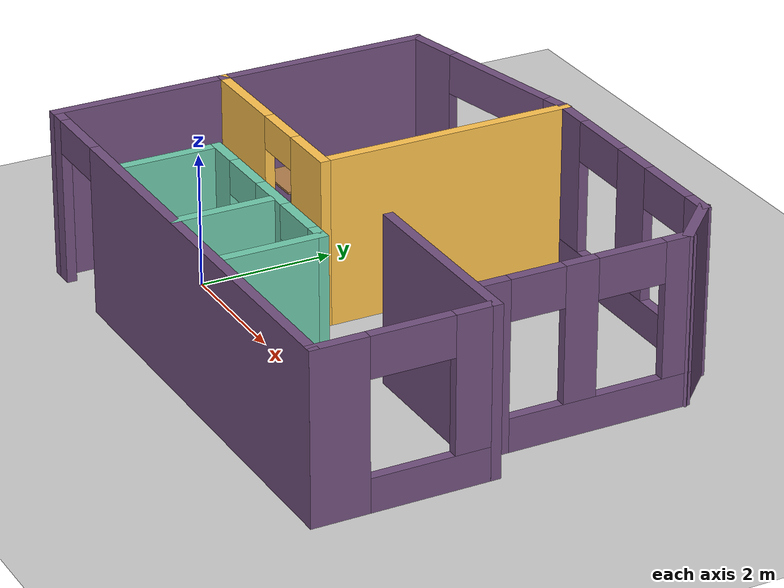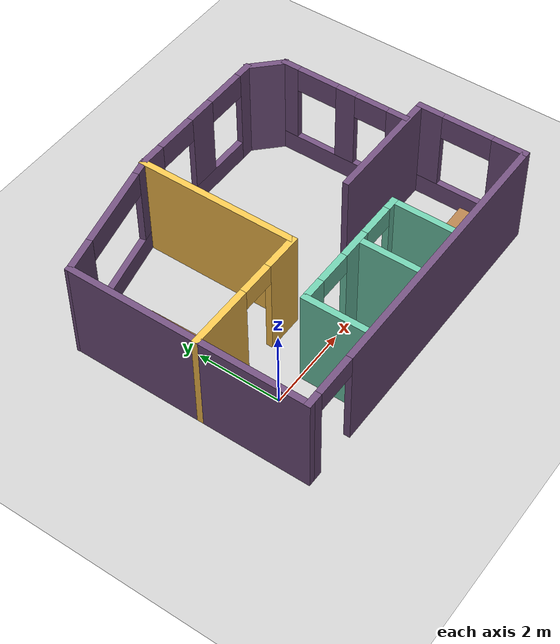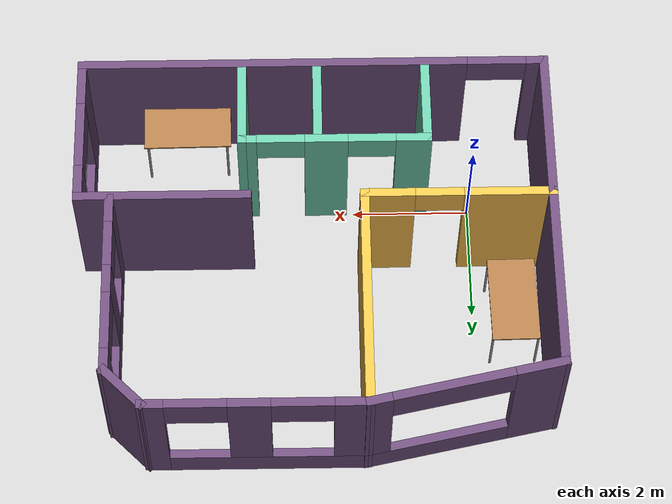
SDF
<sdf version="1.6">
 <world name="default">
  <model name="ground_plane">
   <static>1</static>
   <link name="link">
    <collision name="collision">
     <geometry><plane><normal>0 0 1</normal><size>100 100</size></plane></geometry>
     <surface>
      <contact><collide_bitmask>65535</collide_bitmask></contact>
      <friction><ode><mu>100</mu><mu2>50</mu2></ode></friction>
     </surface>
    </collision>
    <visual name="visual">
     <cast_shadows>0</cast_shadows>
     <geometry><plane><normal>0 0 1</normal><size>100 100</size></plane></geometry>
     <material>
      <script><uri>file://media/materials/scripts/gazebo.material</uri><name>Gazebo/Grey</name></script>
     </material>
    </visual>
   </link>
  </model>
  <model name="apartment-35">
   <pose>2.67015 1.59203 0 0 -0 0</pose>
   <link name="Wall_0">
    <pose>0.006768 -3.16806 0 0 -0 0</pose>
    <visual name="Wall_0_Visual_0">
     <pose>-3.79978 0 1.25 0 -0 0</pose>
     <geometry><box><size>0.37543 0.15 2.5</size></box></geometry>
     <material>
      <script><uri>file://media/materials/scripts/gazebo.material</uri><name>Gazebo/Grey</name></script>
      <ambient>0.443137 0.313726 0.494118 1</ambient>
     </material>
     <meta><layer>0</layer></meta>
    </visual>
    <collision name="Wall_0_Collision_0">
     <geometry><box><size>0.37543 0.15 2.5</size></box></geometry>
     <pose>-3.79978 0 1.25 0 -0 0</pose>
    </collision>
    <visual name="Wall_0_Visual_1">
     <pose>0.687715 0 1.25 0 -0 0</pose>
     <geometry><box><size>6.59957 0.15 2.5</size></box></geometry>
     <material>
      <script><uri>file://media/materials/scripts/gazebo.material</uri><name>Gazebo/Grey</name></script>
      <ambient>0.443137 0.313726 0.494118 1</ambient>
     </material>
     <meta><layer>0</layer></meta>
    </visual>
    <collision name="Wall_0_Collision_1">
     <geometry><box><size>6.59957 0.15 2.5</size></box></geometry>
     <pose>0.687715 0 1.25 0 -0 0</pose>
    </collision>
    <visual name="Wall_0_Visual_2">
     <pose>-3.11207 0 2.25 0 -0 0</pose>
     <geometry><box><size>1 0.15 0.5</size></box></geometry>
     <material>
      <script><uri>file://media/materials/scripts/gazebo.material</uri><name>Gazebo/Grey</name></script>
      <ambient>0.443137 0.313726 0.494118 1</ambient>
     </material>
     <meta><layer>0</layer></meta>
    </visual>
    <collision name="Wall_0_Collision_2">
     <geometry><box><size>1 0.15 0.5</size></box></geometry>
     <pose>-3.11207 0 2.25 0 -0 0</pose>
    </collision>
   </link>
   <link name="Wall_10">
    <pose>0.994046 3.13706 0 0 -0 -3.14153</pose>
    <visual name="Wall_10_Visual_0">
     <pose>-1.66159 0 1.25 0 -0 0</pose>
     <geometry><box><size>0.426824 0.15 2.5</size></box></geometry>
     <material>
      <script><uri>file://media/materials/scripts/gazebo.material</uri><name>Gazebo/Grey</name></script>
      <ambient>0.443137 0.313726 0.494118 1</ambient>
     </material>
     <meta><layer>0</layer></meta>
    </visual>
    <collision name="Wall_10_Collision_0">
     <geometry><box><size>0.426824 0.15 2.5</size></box></geometry>
     <pose>-1.66159 0 1.25 0 -0 0</pose>
    </collision>
    <visual name="Wall_10_Visual_1">
     <pose>0.213412 0 0.25 0 -0 0</pose>
     <geometry><box><size>3.32318 0.15 0.5</size></box></geometry>
     <material>
      <script><uri>file://media/materials/scripts/gazebo.material</uri><name>Gazebo/Grey</name></script>
      <ambient>0.443137 0.313726 0.494118 1</ambient>
     </material>
     <meta><layer>0</layer></meta>
    </visual>
    <collision name="Wall_10_Collision_1">
     <geometry><box><size>3.32318 0.15 0.5</size></box></geometry>
     <pose>0.213412 0 0.25 0 -0 0</pose>
    </collision>
    <visual name="Wall_10_Visual_2">
     <pose>-0.103407 0 1.5 0 -0 0</pose>
     <geometry><box><size>0.689537 0.15 2</size></box></geometry>
     <material>
      <script><uri>file://media/materials/scripts/gazebo.material</uri><name>Gazebo/Grey</name></script>
      <ambient>0.443137 0.313726 0.494118 1</ambient>
     </material>
     <meta><layer>0</layer></meta>
    </visual>
    <collision name="Wall_10_Collision_2">
     <geometry><box><size>0.689537 0.15 2</size></box></geometry>
     <pose>-0.103407 0 1.5 0 -0 0</pose>
    </collision>
    <visual name="Wall_10_Visual_3">
     <pose>1.55818 0 1.5 0 -0 0</pose>
     <geometry><box><size>0.633638 0.15 2</size></box></geometry>
     <material>
      <script><uri>file://media/materials/scripts/gazebo.material</uri><name>Gazebo/Grey</name></script>
      <ambient>0.443137 0.313726 0.494118 1</ambient>
     </material>
     <meta><layer>0</layer></meta>
    </visual>
    <collision name="Wall_10_Collision_3">
     <geometry><box><size>0.633638 0.15 2</size></box></geometry>
     <pose>1.55818 0 1.5 0 -0 0</pose>
    </collision>
    <visual name="Wall_10_Visual_4">
     <pose>-0.948176 0 2.2 0 -0 0</pose>
     <geometry><box><size>1 0.15 0.6</size></box></geometry>
     <material>
      <script><uri>file://media/materials/scripts/gazebo.material</uri><name>Gazebo/Grey</name></script>
      <ambient>0.443137 0.313726 0.494118 1</ambient>
     </material>
     <meta><layer>0</layer></meta>
    </visual>
    <collision name="Wall_10_Collision_4">
     <geometry><box><size>1 0.15 0.6</size></box></geometry>
     <pose>-0.948176 0 2.2 0 -0 0</pose>
    </collision>
    <visual name="Wall_10_Visual_5">
     <pose>0.741362 0 2.2 0 -0 0</pose>
     <geometry><box><size>1 0.15 0.6</size></box></geometry>
     <material>
      <script><uri>file://media/materials/scripts/gazebo.material</uri><name>Gazebo/Grey</name></script>
      <ambient>0.443137 0.313726 0.494118 1</ambient>
     </material>
     <meta><layer>0</layer></meta>
    </visual>
    <collision name="Wall_10_Collision_5">
     <geometry><box><size>1 0.15 0.6</size></box></geometry>
     <pose>0.741362 0 2.2 0 -0 0</pose>
    </collision>
   </link>
   <link name="Wall_11">
    <collision name="Wall_11_Collision">
     <geometry><box><size>3.901 0.15 2.5</size></box></geometry>
     <pose>0 0 1.25 0 -0 0</pose>
    </collision>
    <visual name="Wall_11_Visual">
     <pose>0 0 1.25 0 -0 0</pose>
     <geometry><box><size>3.901 0.15 2.5</size></box></geometry>
     <material>
      <script><uri>file://media/materials/scripts/gazebo.material</uri><name>Gazebo/Grey</name></script>
      <ambient>1 0.764706 0.305882 1</ambient>
     </material>
     <meta><layer>0</layer></meta>
    </visual>
    <pose>-0.805732 1.26144 0 0 -0 -1.5708</pose>
   </link>
   <link name="Wall_13">
    <pose>-2.35573 -0.61406 0 0 -0 3.14159</pose>
    <visual name="Wall_13_Visual_0">
     <pose>-1.16875 0 1.25 0 -0 0</pose>
     <geometry><box><size>0.912507 0.15 2.5</size></box></geometry>
     <material>
      <script><uri>file://media/materials/scripts/gazebo.material</uri><name>Gazebo/Grey</name></script>
      <ambient>1 0.764706 0.305882 1</ambient>
     </material>
     <meta><layer>0</layer></meta>
    </visual>
    <collision name="Wall_13_Collision_0">
     <geometry><box><size>0.912507 0.15 2.5</size></box></geometry>
     <pose>-1.16875 0 1.25 0 -0 0</pose>
    </collision>
    <visual name="Wall_13_Visual_1">
     <pose>0.856253 0 1.25 0 -0 0</pose>
     <geometry><box><size>1.53749 0.15 2.5</size></box></geometry>
     <material>
      <script><uri>file://media/materials/scripts/gazebo.material</uri><name>Gazebo/Grey</name></script>
      <ambient>1 0.764706 0.305882 1</ambient>
     </material>
     <meta><layer>0</layer></meta>
    </visual>
    <collision name="Wall_13_Collision_1">
     <geometry><box><size>1.53749 0.15 2.5</size></box></geometry>
     <pose>0.856253 0 1.25 0 -0 0</pose>
    </collision>
    <visual name="Wall_13_Visual_2">
     <pose>-0.312493 0 2.25 0 -0 0</pose>
     <geometry><box><size>0.8 0.15 0.5</size></box></geometry>
     <material>
      <script><uri>file://media/materials/scripts/gazebo.material</uri><name>Gazebo/Grey</name></script>
      <ambient>1 0.764706 0.305882 1</ambient>
     </material>
     <meta><layer>0</layer></meta>
    </visual>
    <collision name="Wall_13_Collision_2">
     <geometry><box><size>0.8 0.15 0.5</size></box></geometry>
     <pose>-0.312493 0 2.25 0 -0 0</pose>
    </collision>
   </link>
   <link name="Wall_15">
    <collision name="Wall_15_Collision">
     <geometry><box><size>2.70438 0.15 2.5</size></box></geometry>
     <pose>0 0 1.25 0 -0 0</pose>
    </collision>
    <visual name="Wall_15_Visual">
     <pose>0 0 1.25 0 -0 0</pose>
     <geometry><box><size>2.70438 0.15 2.5</size></box></geometry>
     <material>
      <script><uri>file://media/materials/scripts/gazebo.material</uri><name>Gazebo/Grey</name></script>
      <ambient>0.443137 0.313726 0.494118 1</ambient>
     </material>
     <meta><layer>0</layer></meta>
    </visual>
    <pose>-3.90573 -1.89106 0 0 -0 -1.5708</pose>
   </link>
   <link name="Wall_17">
    <collision name="Wall_17_Collision">
     <geometry><box><size>3.25 0.15 2.5</size></box></geometry>
     <pose>0 0 1.25 0 -0 0</pose>
    </collision>
    <visual name="Wall_17_Visual">
     <pose>0 0 1.25 0 -0 0</pose>
     <geometry><box><size>3.25 0.15 2.5</size></box></geometry>
     <material>
      <script><uri>file://media/materials/scripts/gazebo.material</uri><name>Gazebo/Grey</name></script>
      <ambient>0.443137 0.313726 0.494118 1</ambient>
     </material>
     <meta><layer>0</layer></meta>
    </visual>
    <pose>-3.90573 0.93594 0 0 -0 1.5708</pose>
   </link>
   <link name="Wall_18">
    <pose>-2.35573 2.81144 0 0 -0 0.206992</pose>
    <visual name="Wall_18_Visual_0">
     <pose>-1.2169 0 1.25 0 -0 0</pose>
     <geometry><box><size>0.883821 0.15 2.5</size></box></geometry>
     <material>
      <script><uri>file://media/materials/scripts/gazebo.material</uri><name>Gazebo/Grey</name></script>
      <ambient>0.443137 0.313726 0.494118 1</ambient>
     </material>
     <meta><layer>0</layer></meta>
    </visual>
    <collision name="Wall_18_Collision_0">
     <geometry><box><size>0.883821 0.15 2.5</size></box></geometry>
     <pose>-1.2169 0 1.25 0 -0 0</pose>
    </collision>
    <visual name="Wall_18_Visual_1">
     <pose>0.441911 0 0.25 0 -0 0</pose>
     <geometry><box><size>2.4338 0.15 0.5</size></box></geometry>
     <material>
      <script><uri>file://media/materials/scripts/gazebo.material</uri><name>Gazebo/Grey</name></script>
      <ambient>0.443137 0.313726 0.494118 1</ambient>
     </material>
     <meta><layer>0</layer></meta>
    </visual>
    <collision name="Wall_18_Collision_1">
     <geometry><box><size>2.4338 0.15 0.5</size></box></geometry>
     <pose>0.441911 0 0.25 0 -0 0</pose>
    </collision>
    <visual name="Wall_18_Visual_2">
     <pose>1.44191 0 1.5 0 -0 0</pose>
     <geometry><box><size>0.433796 0.15 2</size></box></geometry>
     <material>
      <script><uri>file://media/materials/scripts/gazebo.material</uri><name>Gazebo/Grey</name></script>
      <ambient>0.443137 0.313726 0.494118 1</ambient>
     </material>
     <meta><layer>0</layer></meta>
    </visual>
    <collision name="Wall_18_Collision_2">
     <geometry><box><size>0.433796 0.15 2</size></box></geometry>
     <pose>1.44191 0 1.5 0 -0 0</pose>
    </collision>
    <visual name="Wall_18_Visual_3">
     <pose>0.225013 0 2.2 0 -0 0</pose>
     <geometry><box><size>2 0.15 0.6</size></box></geometry>
     <material>
      <script><uri>file://media/materials/scripts/gazebo.material</uri><name>Gazebo/Grey</name></script>
      <ambient>0.443137 0.313726 0.494118 1</ambient>
     </material>
     <meta><layer>0</layer></meta>
    </visual>
    <collision name="Wall_18_Collision_3">
     <geometry><box><size>2 0.15 0.6</size></box></geometry>
     <pose>0.225013 0 2.2 0 -0 0</pose>
    </collision>
   </link>
   <link name="Wall_20">
    <collision name="Wall_20_Collision">
     <geometry><box><size>1.5 0.15 2.5</size></box></geometry>
     <pose>0 0 1.25 0 -0 0</pose>
    </collision>
    <visual name="Wall_20_Visual">
     <pose>0 0 1.25 0 -0 0</pose>
     <geometry><box><size>1.5 0.15 2.5</size></box></geometry>
     <material>
      <script><uri>file://media/materials/scripts/gazebo.material</uri><name>Gazebo/Grey</name></script>
      <ambient>0.435294 0.796078 0.67451 1</ambient>
     </material>
     <meta><layer>0</layer></meta>
    </visual>
    <pose>1.21959 -2.34338 0 0 -0 -1.5708</pose>
   </link>
   <link name="Wall_22">
    <pose>-0.330406 -1.66838 0 0 -0 3.14159</pose>
    <visual name="Wall_22_Visual_0">
     <pose>-1.46347 0 1.25 0 -0 0</pose>
     <geometry><box><size>0.323069 0.15 2.5</size></box></geometry>
     <material>
      <script><uri>file://media/materials/scripts/gazebo.material</uri><name>Gazebo/Grey</name></script>
      <ambient>0.435294 0.796078 0.67451 1</ambient>
     </material>
     <meta><layer>0</layer></meta>
    </visual>
    <collision name="Wall_22_Collision_0">
     <geometry><box><size>0.323069 0.15 2.5</size></box></geometry>
     <pose>-1.46347 0 1.25 0 -0 0</pose>
    </collision>
    <visual name="Wall_22_Visual_1">
     <pose>-0.137615 0 1.25 0 -0 0</pose>
     <geometry><box><size>0.728631 0.15 2.5</size></box></geometry>
     <material>
      <script><uri>file://media/materials/scripts/gazebo.material</uri><name>Gazebo/Grey</name></script>
      <ambient>0.435294 0.796078 0.67451 1</ambient>
     </material>
     <meta><layer>0</layer></meta>
    </visual>
    <collision name="Wall_22_Collision_1">
     <geometry><box><size>0.728631 0.15 2.5</size></box></geometry>
     <pose>-0.137615 0 1.25 0 -0 0</pose>
    </collision>
    <visual name="Wall_22_Visual_2">
     <pose>1.32585 0 1.25 0 -0 0</pose>
     <geometry><box><size>0.5983 0.15 2.5</size></box></geometry>
     <material>
      <script><uri>file://media/materials/scripts/gazebo.material</uri><name>Gazebo/Grey</name></script>
      <ambient>0.435294 0.796078 0.67451 1</ambient>
     </material>
     <meta><layer>0</layer></meta>
    </visual>
    <collision name="Wall_22_Collision_2">
     <geometry><box><size>0.5983 0.15 2.5</size></box></geometry>
     <pose>1.32585 0 1.25 0 -0 0</pose>
    </collision>
    <visual name="Wall_22_Visual_3">
     <pose>-0.901931 0 2.25 0 -0 0</pose>
     <geometry><box><size>0.8 0.15 0.5</size></box></geometry>
     <material>
      <script><uri>file://media/materials/scripts/gazebo.material</uri><name>Gazebo/Grey</name></script>
      <ambient>0.435294 0.796078 0.67451 1</ambient>
     </material>
     <meta><layer>0</layer></meta>
    </visual>
    <collision name="Wall_22_Collision_3">
     <geometry><box><size>0.8 0.15 0.5</size></box></geometry>
     <pose>-0.901931 0 2.25 0 -0 0</pose>
    </collision>
    <visual name="Wall_22_Visual_4">
     <pose>0.6267 0 2.25 0 -0 0</pose>
     <geometry><box><size>0.8 0.15 0.5</size></box></geometry>
     <material>
      <script><uri>file://media/materials/scripts/gazebo.material</uri><name>Gazebo/Grey</name></script>
      <ambient>0.435294 0.796078 0.67451 1</ambient>
     </material>
     <meta><layer>0</layer></meta>
    </visual>
    <collision name="Wall_22_Collision_4">
     <geometry><box><size>0.8 0.15 0.5</size></box></geometry>
     <pose>0.6267 0 2.25 0 -0 0</pose>
    </collision>
   </link>
   <link name="Wall_23">
    <collision name="Wall_23_Collision">
     <geometry><box><size>1.5 0.15 2.5</size></box></geometry>
     <pose>0 0 1.25 0 -0 0</pose>
    </collision>
    <visual name="Wall_23_Visual">
     <pose>0 0 1.25 0 -0 0</pose>
     <geometry><box><size>1.5 0.15 2.5</size></box></geometry>
     <material>
      <script><uri>file://media/materials/scripts/gazebo.material</uri><name>Gazebo/Grey</name></script>
      <ambient>0.435294 0.796078 0.67451 1</ambient>
     </material>
     <meta><layer>0</layer></meta>
    </visual>
    <pose>-1.88041 -2.34338 0 0 -0 -1.5708</pose>
   </link>
   <link name="Wall_27">
    <collision name="Wall_27_Collision">
     <geometry><box><size>1.5 0.15 2.5</size></box></geometry>
     <pose>0 0 1.25 0 -0 0</pose>
    </collision>
    <visual name="Wall_27_Visual">
     <pose>0 0 1.25 0 -0 0</pose>
     <geometry><box><size>1.5 0.15 2.5</size></box></geometry>
     <material>
      <script><uri>file://media/materials/scripts/gazebo.material</uri><name>Gazebo/Grey</name></script>
      <ambient>0.435294 0.796078 0.67451 1</ambient>
     </material>
     <meta><layer>0</layer></meta>
    </visual>
    <pose>-0.051995 -2.47975 0 0 -0 1.5708</pose>
   </link>
   <link name="Wall_3">
    <pose>3.91927 -1.89106 0 0 -0 1.5708</pose>
    <visual name="Wall_3_Visual_0">
     <pose>-0.932156 0 1.25 0 -0 0</pose>
     <geometry><box><size>0.839473 0.15 2.5</size></box></geometry>
     <material>
      <script><uri>file://media/materials/scripts/gazebo.material</uri><name>Gazebo/Grey</name></script>
      <ambient>0.443137 0.313726 0.494118 1</ambient>
     </material>
     <meta><layer>0</layer></meta>
    </visual>
    <collision name="Wall_3_Collision_0">
     <geometry><box><size>0.839473 0.15 2.5</size></box></geometry>
     <pose>-0.932156 0 1.25 0 -0 0</pose>
    </collision>
    <visual name="Wall_3_Visual_1">
     <pose>0.419736 0 0.25 0 -0 0</pose>
     <geometry><box><size>1.86431 0.15 0.5</size></box></geometry>
     <material>
      <script><uri>file://media/materials/scripts/gazebo.material</uri><name>Gazebo/Grey</name></script>
      <ambient>0.443137 0.313726 0.494118 1</ambient>
     </material>
     <meta><layer>0</layer></meta>
    </visual>
    <collision name="Wall_3_Collision_1">
     <geometry><box><size>1.86431 0.15 0.5</size></box></geometry>
     <pose>0.419736 0 0.25 0 -0 0</pose>
    </collision>
    <visual name="Wall_3_Visual_2">
     <pose>1.01974 0 1.5 0 -0 0</pose>
     <geometry><box><size>0.664312 0.15 2</size></box></geometry>
     <material>
      <script><uri>file://media/materials/scripts/gazebo.material</uri><name>Gazebo/Grey</name></script>
      <ambient>0.443137 0.313726 0.494118 1</ambient>
     </material>
     <meta><layer>0</layer></meta>
    </visual>
    <collision name="Wall_3_Collision_2">
     <geometry><box><size>0.664312 0.15 2</size></box></geometry>
     <pose>1.01974 0 1.5 0 -0 0</pose>
    </collision>
    <visual name="Wall_3_Visual_3">
     <pose>0.087581 0 2.2 0 -0 0</pose>
     <geometry><box><size>1.2 0.15 0.6</size></box></geometry>
     <material>
      <script><uri>file://media/materials/scripts/gazebo.material</uri><name>Gazebo/Grey</name></script>
      <ambient>0.443137 0.313726 0.494118 1</ambient>
     </material>
     <meta><layer>0</layer></meta>
    </visual>
    <collision name="Wall_3_Collision_3">
     <geometry><box><size>1.2 0.15 0.6</size></box></geometry>
     <pose>0.087581 0 2.2 0 -0 0</pose>
    </collision>
   </link>
   <link name="Wall_4">
    <collision name="Wall_4_Collision">
     <geometry><box><size>2.93855 0.15 2.5</size></box></geometry>
     <pose>0 0 1.25 0 -0 0</pose>
    </collision>
    <visual name="Wall_4_Visual">
     <pose>0 0 1.25 0 -0 0</pose>
     <geometry><box><size>2.93855 0.15 2.5</size></box></geometry>
     <material>
      <script><uri>file://media/materials/scripts/gazebo.material</uri><name>Gazebo/Grey</name></script>
      <ambient>0.443137 0.313726 0.494118 1</ambient>
     </material>
     <meta><layer>0</layer></meta>
    </visual>
    <pose>2.52527 -0.61406 0 0 -0 3.14159</pose>
   </link>
   <link name="Wall_7">
    <pose>3.39486 0.986143 0 0 -0 1.5708</pose>
    <visual name="Wall_7_Visual_0">
     <pose>-1.37146 0 1.25 0 -0 0</pose>
     <geometry><box><size>0.507076 0.15 2.5</size></box></geometry>
     <material>
      <script><uri>file://media/materials/scripts/gazebo.material</uri><name>Gazebo/Grey</name></script>
      <ambient>0.443137 0.313726 0.494118 1</ambient>
     </material>
     <meta><layer>0</layer></meta>
    </visual>
    <collision name="Wall_7_Collision_0">
     <geometry><box><size>0.507076 0.15 2.5</size></box></geometry>
     <pose>-1.37146 0 1.25 0 -0 0</pose>
    </collision>
    <visual name="Wall_7_Visual_1">
     <pose>0.253538 0 0.25 0 -0 0</pose>
     <geometry><box><size>2.74292 0.15 0.5</size></box></geometry>
     <material>
      <script><uri>file://media/materials/scripts/gazebo.material</uri><name>Gazebo/Grey</name></script>
      <ambient>0.443137 0.313726 0.494118 1</ambient>
     </material>
     <meta><layer>0</layer></meta>
    </visual>
    <collision name="Wall_7_Collision_1">
     <geometry><box><size>2.74292 0.15 0.5</size></box></geometry>
     <pose>0.253538 0 0.25 0 -0 0</pose>
    </collision>
    <visual name="Wall_7_Visual_2">
     <pose>-0.074006 0 1.5 0 -0 0</pose>
     <geometry><box><size>0.487836 0.15 2</size></box></geometry>
     <material>
      <script><uri>file://media/materials/scripts/gazebo.material</uri><name>Gazebo/Grey</name></script>
      <ambient>0.443137 0.313726 0.494118 1</ambient>
     </material>
     <meta><layer>0</layer></meta>
    </visual>
    <collision name="Wall_7_Collision_2">
     <geometry><box><size>0.487836 0.15 2</size></box></geometry>
     <pose>-0.074006 0 1.5 0 -0 0</pose>
    </collision>
    <visual name="Wall_7_Visual_3">
     <pose>1.39746 0 1.5 0 -0 0</pose>
     <geometry><box><size>0.455088 0.15 2</size></box></geometry>
     <material>
      <script><uri>file://media/materials/scripts/gazebo.material</uri><name>Gazebo/Grey</name></script>
      <ambient>0.443137 0.313726 0.494118 1</ambient>
     </material>
     <meta><layer>0</layer></meta>
    </visual>
    <collision name="Wall_7_Collision_3">
     <geometry><box><size>0.455088 0.15 2</size></box></geometry>
     <pose>1.39746 0 1.5 0 -0 0</pose>
    </collision>
    <visual name="Wall_7_Visual_4">
     <pose>-0.717924 0 2.2 0 -0 0</pose>
     <geometry><box><size>0.8 0.15 0.6</size></box></geometry>
     <material>
      <script><uri>file://media/materials/scripts/gazebo.material</uri><name>Gazebo/Grey</name></script>
      <ambient>0.443137 0.313726 0.494118 1</ambient>
     </material>
     <meta><layer>0</layer></meta>
    </visual>
    <collision name="Wall_7_Collision_4">
     <geometry><box><size>0.8 0.15 0.6</size></box></geometry>
     <pose>-0.717924 0 2.2 0 -0 0</pose>
    </collision>
    <visual name="Wall_7_Visual_5">
     <pose>0.669912 0 2.2 0 -0 0</pose>
     <geometry><box><size>1 0.15 0.6</size></box></geometry>
     <material>
      <script><uri>file://media/materials/scripts/gazebo.material</uri><name>Gazebo/Grey</name></script>
      <ambient>0.443137 0.313726 0.494118 1</ambient>
     </material>
     <meta><layer>0</layer></meta>
    </visual>
    <collision name="Wall_7_Collision_5">
     <geometry><box><size>1 0.15 0.6</size></box></geometry>
     <pose>0.669912 0 2.2 0 -0 0</pose>
    </collision>
   </link>
   <link name="Wall_8">
    <collision name="Wall_8_Collision">
     <geometry><box><size>1 0.15 2.5</size></box></geometry>
     <pose>0 0 1.25 0 -0 0</pose>
    </collision>
    <visual name="Wall_8_Visual">
     <pose>0 0 1.25 0 -0 0</pose>
     <geometry><box><size>1 0.15 2.5</size></box></geometry>
     <material>
      <script><uri>file://media/materials/scripts/gazebo.material</uri><name>Gazebo/Grey</name></script>
      <ambient>0.443137 0.313726 0.494118 1</ambient>
     </material>
     <meta><layer>0</layer></meta>
    </visual>
    <pose>3.09434 2.83666 0 0 -0 2.35619</pose>
   </link>
   <static>1</static>
  </model>
  <model name="table">
   <static>1</static>
   <link name="link">
    <collision name="surface">
     <pose>0 0 1 0 -0 0</pose>
     <geometry><box><size>1.5 0.8 0.03</size></box></geometry>
     <surface><friction><ode><mu>0.6</mu><mu2>0.6</mu2></ode></friction></surface>
    </collision>
    <visual name="visual1">
     <pose>0 0 1 0 -0 0</pose>
     <geometry><box><size>1.5 0.8 0.03</size></box></geometry>
     <material>
      <script><uri>file://media/materials/scripts/gazebo.material</uri><name>Gazebo/Wood</name></script>
     </material>
    </visual>
    <collision name="front_left_leg">
     <pose>0.68 0.38 0.5 0 -0 0</pose>
     <geometry><cylinder><radius>0.02</radius><length>1</length></cylinder></geometry>
    </collision>
    <visual name="front_left_leg">
     <pose>0.68 0.38 0.5 0 -0 0</pose>
     <geometry><cylinder><radius>0.02</radius><length>1</length></cylinder></geometry>
     <material>
      <script><uri>file://media/materials/scripts/gazebo.material</uri><name>Gazebo/Grey</name></script>
     </material>
    </visual>
    <collision name="front_right_leg">
     <pose>0.68 -0.38 0.5 0 -0 0</pose>
     <geometry><cylinder><radius>0.02</radius><length>1</length></cylinder></geometry>
    </collision>
    <visual name="front_right_leg">
     <pose>0.68 -0.38 0.5 0 -0 0</pose>
     <geometry><cylinder><radius>0.02</radius><length>1</length></cylinder></geometry>
     <material>
      <script><uri>file://media/materials/scripts/gazebo.material</uri><name>Gazebo/Grey</name></script>
     </material>
    </visual>
    <collision name="back_right_leg">
     <pose>-0.68 -0.38 0.5 0 -0 0</pose>
     <geometry><cylinder><radius>0.02</radius><length>1</length></cylinder></geometry>
    </collision>
    <visual name="back_right_leg">
     <pose>-0.68 -0.38 0.5 0 -0 0</pose>
     <geometry><cylinder><radius>0.02</radius><length>1</length></cylinder></geometry>
     <material>
      <script><uri>file://media/materials/scripts/gazebo.material</uri><name>Gazebo/Grey</name></script>
     </material>
    </visual>
    <collision name="back_left_leg">
     <pose>-0.68 0.38 0.5 0 -0 0</pose>
     <geometry><cylinder><radius>0.02</radius><length>1</length></cylinder></geometry>
    </collision>
    <visual name="back_left_leg">
     <pose>-0.68 0.38 0.5 0 -0 0</pose>
     <geometry><cylinder><radius>0.02</radius><length>1</length></cylinder></geometry>
     <material>
      <script><uri>file://media/materials/scripts/gazebo.material</uri><name>Gazebo/Grey</name></script>
     </material>
    </visual>
   </link>
   <pose>4.86246 -1.11866 0.175263 0 -0 0.012836</pose>
  </model>
  <model name="table_0">
   <static>1</static>
   <link name="link">
    <collision name="surface">
     <pose>0 0 1 0 -0 0</pose>
     <geometry><box><size>1.5 0.8 0.03</size></box></geometry>
     <surface><friction><ode><mu>0.6</mu><mu2>0.6</mu2></ode></friction></surface>
    </collision>
    <visual name="visual1">
     <pose>0 0 1 0 -0 0</pose>
     <geometry><box><size>1.5 0.8 0.03</size></box></geometry>
     <material>
      <script><uri>file://media/materials/scripts/gazebo.material</uri><name>Gazebo/Wood</name></script>
     </material>
    </visual>
    <collision name="front_left_leg">
     <pose>0.68 0.38 0.5 0 -0 0</pose>
     <geometry><cylinder><radius>0.02</radius><length>1</length></cylinder></geometry>
    </collision>
    <visual name="front_left_leg">
     <pose>0.68 0.38 0.5 0 -0 0</pose>
     <geometry><cylinder><radius>0.02</radius><length>1</length></cylinder></geometry>
     <material>
      <script><uri>file://media/materials/scripts/gazebo.material</uri><name>Gazebo/Grey</name></script>
     </material>
    </visual>
    <collision name="front_right_leg">
     <pose>0.68 -0.38 0.5 0 -0 0</pose>
     <geometry><cylinder><radius>0.02</radius><length>1</length></cylinder></geometry>
    </collision>
    <visual name="front_right_leg">
     <pose>0.68 -0.38 0.5 0 -0 0</pose>
     <geometry><cylinder><radius>0.02</radius><length>1</length></cylinder></geometry>
     <material>
      <script><uri>file://media/materials/scripts/gazebo.material</uri><name>Gazebo/Grey</name></script>
     </material>
    </visual>
    <collision name="back_right_leg">
     <pose>-0.68 -0.38 0.5 0 -0 0</pose>
     <geometry><cylinder><radius>0.02</radius><length>1</length></cylinder></geometry>
    </collision>
    <visual name="back_right_leg">
     <pose>-0.68 -0.38 0.5 0 -0 0</pose>
     <geometry><cylinder><radius>0.02</radius><length>1</length></cylinder></geometry>
     <material>
      <script><uri>file://media/materials/scripts/gazebo.material</uri><name>Gazebo/Grey</name></script>
     </material>
    </visual>
    <collision name="back_left_leg">
     <pose>-0.68 0.38 0.5 0 -0 0</pose>
     <geometry><cylinder><radius>0.02</radius><length>1</length></cylinder></geometry>
    </collision>
    <visual name="back_left_leg">
     <pose>-0.68 0.38 0.5 0 -0 0</pose>
     <geometry><cylinder><radius>0.02</radius><length>1</length></cylinder></geometry>
     <material>
      <script><uri>file://media/materials/scripts/gazebo.material</uri><name>Gazebo/Grey</name></script>
     </material>
    </visual>
   </link>
   <pose>-0.628702 2.21474 0 0 -0 1.58671</pose>
  </model>
 </world>
</sdf>
